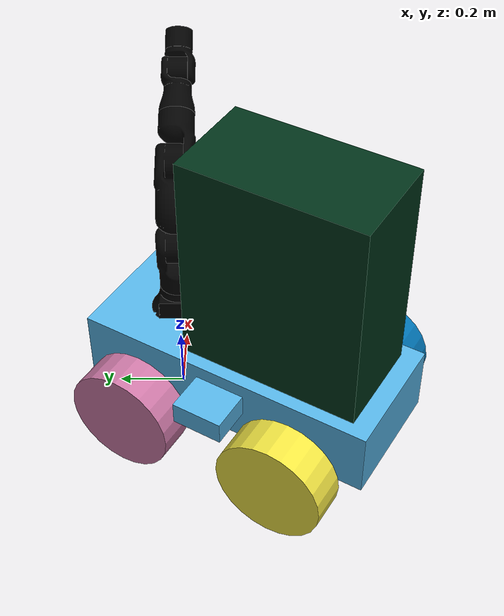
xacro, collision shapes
<?xml version="1.0"?>
<robot xmlns:xacro="http://www.ros.org/wiki/xacro" name="igus_rebel">

	<!-- Controller settings, only enable a single one in the launch file -->
	<xacro:arg name="hardware_protocol" default="cri" />

	<!-- Gripper selection -->
	<xacro:arg name="gripper" default="none" />
	<xacro:property name="gripper" value="$(arg gripper)" />

	<!-- Scout base selection -->
	<xacro:arg name="load_base" default="true" />

	<!-- Camera type selection -->
	<xacro:arg name="camera_type" default="realsense" />
	<xacro:property name="camera_type" value="$(arg camera_type)" />

	<!-- Include and call description macro -->
	<xacro:include filename="$(find igus_rebel_description_ros2)/urdf/igus_rebel.description.xacro" />
	<xacro:igus_rebel_description />

	<!-- Controller macro -->
	<xacro:include filename="$(find igus_rebel_description_ros2)/urdf/igus_rebel.control.xacro" />
	<xacro:igus_rebel_control hardware_protocol="$(arg hardware_protocol)" />

	<xacro:include filename="$(find igus_rebel_description_ros2)/urdf/igus_rebel.gazebo.xacro" />

	<!-- Add world link -->
	<link name="world" />
	<joint name="world_to_base" type="fixed">
		<parent link="world" />
		<child link="base_link" />
		<origin xyz="0.0 0.0 0.32" rpy="0.0 0.0 0.0" />
	</joint>

	<!-- Mounts, camera, effectors -->
	<xacro:if value="${gripper == 'camera'}">

		<xacro:include filename="$(find igus_rebel_description_ros2)/urdf/grippers/grippers.xacro"/>
		<xacro:gripper camera_type="$(arg camera_type)"/>

    	<xacro:if value="${camera_type == 'oakd'}">
			<xacro:include filename="$(find igus_rebel_description_ros2)/urdf/camera/oak_d_pro.xacro"/>
			<xacro:oakd_link/>
    	</xacro:if>

  	</xacro:if>

	<!-- Load base -->
	<xacro:if value="$(arg load_base)">

		<!-- Mobile Robot base -->
		<xacro:include filename="$(find igus_rebel_description_ros2)/urdf/mobile_robot/scout_v2.xacro" />

		<joint name="base_link_to_rebel_support" type="fixed">
			<parent link="base_link" />
			<child link="rebel_support" />
			<origin xyz="0.0 0.0 0.0" rpy="0 0 ${pi/3}" />
		</joint>

		<link name="rebel_support" />

		<!-- virtual joint acting as a link between base_link and mobile_robot_base_link -->
		<joint name="base_link_to_mobile_robot_base_link" type="fixed">
			<parent link="rebel_support" />
			<child link="mobile_robot_base_link" />
			<origin xyz="-0.26 0.0 -0.1" rpy="0 0 ${pi}" />
		</joint>

		<!-- castle with tower mounting sensors, batteries, computer and everyhting else-->
		<xacro:include filename="$(find igus_rebel_description_ros2)/urdf/mobile_robot/castle.xacro" />

	</xacro:if>

</robot>

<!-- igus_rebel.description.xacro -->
<robot xmlns:xacro="http://www.ros.org/wiki/xacro" name="igus_rebel">

    <material name="dark_grey">
        <color rgba="${2/255} ${2/255} ${2/255} 1.0" />
    </material>

    <xacro:macro name="igus_rebel_description">

        <!-- Set both at 0.0 if collapsing is not interesting in gazebo -->
        <xacro:property name="damping" value="0.1"/>
        <xacro:property name="friction" value="10.0"/>

        <link name="base_link">
            <visual>
                <geometry>
                    <mesh filename="file://$(find igus_rebel_description_ros2)/meshes/new/Joint0.dae" />
                </geometry>
				<material name="dark_grey"/>
            </visual>
            <collision>
                <geometry>
                    <mesh filename="file://$(find igus_rebel_description_ros2)/meshes/new/Joint0.dae" />
                </geometry>
            </collision>
            <inertial>
                <mass value="1.0" />
                <inertia ixx="1.0" ixy="0.0" ixz="0.0" iyy="1.0" iyz="0.0" izz="1.0" />
            </inertial>
        </link>
        <joint name="joint1" type="revolute">
            <parent link="base_link" />
            <child link="link_1" />
            <origin rpy="0.0 0.0 0.0" xyz="0.0 0 0.100" />
            <axis xyz="0 0 1" />
            <limit effort="330.0" lower="${-pi*179/180}" upper="${pi*179/180}" velocity="${pi*45/180}" />
            <dynamics damping="${damping}" friction="${friction}"/>
        </joint>
        <link name="link_1">
            <visual>
                <geometry>
                    <mesh filename="file://$(find igus_rebel_description_ros2)/meshes/new/Joint1.dae" />
                </geometry>
                <origin rpy="0 0 0" xyz="0 0 0" />
				<material name="dark_grey"/>
            </visual>
            <collision>
                <geometry>
                    <mesh filename="file://$(find igus_rebel_description_ros2)/meshes/new/Joint1.dae" />
                </geometry>
                <origin rpy="0 0 0" xyz="0 0 0" />
            </collision>
            <inertial>
                <mass value="0.1" />
                <inertia ixx="0.03" ixy="0.0" ixz="0.0" iyy="0.03" iyz="0.0" izz="0.03" />
            </inertial>
        </link>
        <joint name="joint2" type="revolute">
            <parent link="link_1" />
            <child link="link_2" />
            <origin rpy="0.0 ${pi/6} 0.0" xyz="0.0 0 0.149" />
            <axis xyz="0 1 0" />
            <!-- pi*2/3 are the physical limits, but to avoid any collisions we set the actual limits lower -->
            <limit effort="330.0" lower="${-pi*11/18}" upper="${pi*11/18}" velocity="${pi*45/180}" />
            <dynamics damping="${damping}" friction="${friction}"/>
        </joint>
        <link name="link_2">
            <visual>
                <geometry>
                    <mesh filename="file://$(find igus_rebel_description_ros2)/meshes/new/Joint2.dae" />
                </geometry>
                <origin rpy="0 0 0" xyz="0 0 0" />
				<material name="dark_grey"/>
            </visual>
            <collision>
                <geometry>
                    <mesh filename="file://$(find igus_rebel_description_ros2)/meshes/new/Joint2.dae" />
                </geometry>
                <origin rpy="0 0 0" xyz="0 0 0" />
            </collision>
            <inertial>
                <mass value="0.1" />
                <inertia ixx="0.03" ixy="0.0" ixz="0.0" iyy="0.03" iyz="0.0" izz="0.03" />
            </inertial>
        </link>
        <joint name="joint3" type="revolute">
            <parent link="link_2" />
            <child link="link_5" />
            <origin rpy="0.0 ${pi/6} 0.0" xyz="0.0 0.0 0.2384" />
            <axis xyz="0 1 0" />
            <!-- pi*2/3 are the physical limits, but to avoid any collisions we set the actual limits lower -->
            <limit effort="330.0" lower="${-pi*11/18}" upper="${pi*11/18}" velocity="${pi*45/180}" />
            <dynamics damping="${damping}" friction="${friction}"/>
        </joint>
        <link name="link_5">
            <visual>
                <geometry>
                    <mesh filename="file://$(find igus_rebel_description_ros2)/meshes/new/Joint3.dae" />
                </geometry>
                <origin rpy="0 0 0" xyz="0 0 0" />
				<material name="dark_grey"/>
            </visual>
            <collision>
                <geometry>
                    <mesh filename="file://$(find igus_rebel_description_ros2)/meshes/new/Joint3.dae" />
                </geometry>
                <origin rpy="0 0 0" xyz="0 0 0" />
            </collision>
            <inertial>
                <mass value="0.1" />
                <inertia ixx="0.03" ixy="0.0" ixz="0.0" iyy="0.03" iyz="0.0" izz="0.03" />
            </inertial>
        </link>
        <joint name="joint4" type="revolute">
            <parent link="link_5" />
            <child link="link_6" />
            <!-- TODO The 0.03m offset are most likely caused by the mesh file (Issue 15)-->
            <origin rpy="0.0 0.0 0.0" xyz="0.0 0 ${0.149 - 0.03}" />
            <axis xyz="0 0 1" />
            <limit effort="330.0" lower="${-pi*179/180}" upper="${pi*179/180}" velocity="${pi*45/180}" />
            <dynamics damping="${damping}" friction="${friction}"/>
        </joint>
        <link name="link_6">
            <visual>
                <geometry>
                    <mesh filename="file://$(find igus_rebel_description_ros2)/meshes/new/Joint4.dae" />
                </geometry>
                <origin rpy="0 0 0" xyz="0 0 0" />
				<material name="dark_grey"/>
            </visual>
            <collision>
                <geometry>
                    <mesh filename="file://$(find igus_rebel_description_ros2)/meshes/new/Joint4.dae" />
                </geometry>
                <origin rpy="0 0 0" xyz="0 0 0" />
            </collision>
            <inertial>
                <mass value="0.1" />
                <inertia ixx="0.03" ixy="0.0" ixz="0.0" iyy="0.03" iyz="0.0" izz="0.03" />
            </inertial>
        </link>
        <joint name="joint5" type="revolute">
            <parent link="link_6" />
            <child link="link_7" />
            <!-- TODO The 0.03m offset are most likely caused by the mesh file (Issue 15) -->
            <origin rpy="0.0 ${-pi/24} 0.0" xyz="0.0 0 ${0.14 + 0.03}" />
            <axis xyz="0 1 0" />
            <limit effort="330.0" lower="${-pi*19/36 + pi/24}" upper="${pi*19/36 + pi/24}" velocity="${pi*45/180}" />
            <dynamics damping="${damping}" friction="${friction}"/>
        </joint>
        <link name="link_7">
            <visual>
                <geometry>
                    <mesh filename="file://$(find igus_rebel_description_ros2)/meshes/new/Joint5.dae" />
                </geometry>
                <origin rpy="0 0 0" xyz="0 0 0" />
				<material name="dark_grey"/>
            </visual>
            <collision>
                <geometry>
                    <mesh filename="file://$(find igus_rebel_description_ros2)/meshes/new/Joint5.dae" />
                </geometry>
                <origin rpy="0 0 0" xyz="0 0 0" />
            </collision>
            <inertial>
                <mass value="0.1" />
                <inertia ixx="0.03" ixy="0.0" ixz="0.0" iyy="0.03" iyz="0.0" izz="0.03" />
            </inertial>
        </link>

        <joint name="joint6" type="revolute">
            <parent link="link_7" />
            <child link="link_8" />
            <origin rpy="0.0 0.0 0.0" xyz="0.0 0 0.1208" />
            <axis xyz="0 0 1" />
            <limit effort="330.0" lower="${-pi*179/180}" upper="${pi*179/180}" velocity="${pi*45/180}" />
            <dynamics damping="${damping}" friction="${friction}"/>
        </joint>

        <link name="link_8">
            <visual>
                <geometry>
                    <mesh filename="file://$(find igus_rebel_description_ros2)/meshes/new/Joint6.dae" />
                </geometry>
                <origin rpy="0 0 0" xyz="0.0 0 0" />
				<material name="dark_grey"/>
            </visual>
            <collision>
                <geometry>
                    <mesh filename="file://$(find igus_rebel_description_ros2)/meshes/new/Joint6.dae" />
                </geometry>
                <origin rpy="0 0 0" xyz="0.0 0 0" />
            </collision>
            <inertial>
                <mass value="0.1" />
                <inertia ixx="0.03" ixy="0.0" ixz="0.0" iyy="0.03" iyz="0.0" izz="0.03" />
            </inertial>
        </link>
        <joint name="joint7" type="fixed">
            <parent link="link_8" />
            <child link="flange" />
            <origin rpy="0.0 ${-pi/2} 0.0" xyz="0.0 0 0.0012" />
            <axis xyz="0 0 0" />
            <dynamics damping="${damping}" friction="${friction}"/>
        </joint>
        <link name="flange">
        </link>

    </xacro:macro>
</robot>

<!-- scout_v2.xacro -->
<robot name="scout_v2" xmlns:xacro="http://ros.org/wiki/xacro">

	<!-- Variables -->
	<xacro:property name="M_PI" value="3.14159" />

	<!-- Vehicle Geometries -->
	<xacro:property name="base_x_size" value="0.9250000" />
	<xacro:property name="base_y_size" value="0.380000" />
	<xacro:property name="base_z_size" value="0.210000" />

	<xacro:property name="wheelbase" value="0.498" />
	<xacro:property name="track" value="0.58306" />
	<xacro:property name="wheel_vertical_offset" value="-0.0702" />

	<xacro:property name="wheel_length" value="1.1653e-01" />
	<xacro:property name="wheel_radius" value="1.6459e-01" />

	<!-- Base link -->
	<link name="mobile_robot_base_link">
		<visual>
			<origin xyz="0 0 0" rpy="0 0 0" />
			<geometry>
				<mesh filename="file://$(find igus_rebel_description_ros2)/meshes/mobile_robot/mobile_robot_base_link.dae" />
			</geometry>
		</visual>
		<collision>
			<origin xyz="0 0 0.008" rpy="0 0 0" />
			<geometry>
				<box size="${base_x_size} ${base_y_size} ${base_z_size}" />
			</geometry>
		</collision>
		<collision>
			<origin xyz="0 0 ${base_z_size/6}" rpy="0 0 0" />
			<geometry>
				<box size="${base_x_size/6} ${base_y_size*1.65} ${base_z_size/3}" />
			</geometry>
		</collision>
	</link>

	<link name="inertial_link">
		<inertial>
			<mass value="50" />
			<origin xyz="0.0 0.0 0.0" />
			<inertia ixx="2.288641" ixy="0" ixz="0" iyy="5.103976" iyz="0" izz="3.431465" />
		</inertial>
	</link>

	<joint name="inertial_joint" type="fixed">
		<origin xyz="0 0 0" rpy="0 0 0" />
		<parent link="mobile_robot_base_link" />
		<child link="inertial_link" />
	</joint>

	<!-- Scout wheel macros -->
	<xacro:include filename="$(find igus_rebel_description_ros2)/urdf/mobile_robot/scout_wheel_type1.xacro" />
	<xacro:include filename="$(find igus_rebel_description_ros2)/urdf/mobile_robot/scout_wheel_type2.xacro" />
	<!-- wheel labeled from 0 to 3, conter-clockwise, starting from front right wheel -->
	<!-- motor 1 and 2 (left side) are mechanically installed in a reversed direction -->
	<xacro:scout_wheel_type1 wheel_prefix="front_right" x="${wheelbase/2}" y="${-track/2}" z="${wheel_vertical_offset}"
		phi="${pi}" />

	<xacro:scout_wheel_type2 wheel_prefix="front_left" x="${wheelbase/2}" y="${track/2}" z="${wheel_vertical_offset}" phi="0" />

	<xacro:scout_wheel_type1 wheel_prefix="rear_left" x="${-wheelbase/2}" y="${track/2}" z="${wheel_vertical_offset}" phi="0" />

	<xacro:scout_wheel_type2 wheel_prefix="rear_right" x="${-wheelbase/2}" y="${-track/2}" z="${wheel_vertical_offset}"
		phi="${pi}" />

	<link name="front_mount" />

	<joint name="front_mount_joint" type="fixed">
		<origin xyz="0.325 0.0 0.112701" rpy="0 0 0" />
		<parent link="mobile_robot_base_link" />
		<child link="front_mount" />
	</joint>

	<link name="rear_mount" />

	<joint name="rear_mount_joint" type="fixed">
		<origin xyz="-0.325 0.0 0.112701" rpy="0 0 0" />
		<parent link="mobile_robot_base_link" />
		<child link="rear_mount" />
	</joint>

	<!-- Gazebo definitions  -->
</robot>

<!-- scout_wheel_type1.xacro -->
<robot xmlns:xacro="http://ros.org/wiki/xacro" name="scout_v2">

	<xacro:macro name="scout_wheel_type1" params="wheel_prefix x y z phi">

		<link name="${wheel_prefix}_wheel_link">
			<inertial>
				<mass value="8" />
				<origin xyz="0 0 0" />
				<inertia ixx="0.1171" ixy="0" ixz="0" iyy="0.1361" iyz="0" izz="0.1171" />
			</inertial>
			<visual>
				<origin xyz="0 0 0" rpy="0 0 0" />
				<geometry>
					<mesh filename="file://$(find igus_rebel_description_ros2)/meshes/mobile_robot/wheel_type1.dae" />
				</geometry>
			</visual>
			<collision>
				<origin xyz="0 0 0" rpy="${pi/2} 0 0" />
				<geometry>
					<cylinder length="${wheel_length}" radius="${wheel_radius}" />
				</geometry>
				<contact>
					<ode>
						<min_depth>0.001</min_depth>
					</ode>
				</contact>
			</collision>
		</link>

		<joint name="${wheel_prefix}_wheel" type="fixed">
			<parent link="mobile_robot_base_link" />
			<child link="${wheel_prefix}_wheel_link" />
			<origin xyz="${x} ${y} ${z}" rpy="${phi} 0.0 0.0" />
			<axis xyz="0 -1 0" rpy="0 0 0" />
			<dynamics damping="0.0" friction="20" />
		</joint>
	</xacro:macro>

</robot>

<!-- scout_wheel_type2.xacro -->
<robot xmlns:xacro="http://ros.org/wiki/xacro" name="scout_v2">

	<xacro:macro name="scout_wheel_type2" params="wheel_prefix x y z phi">

		<link name="${wheel_prefix}_wheel_link">
			<inertial>
				<mass value="8" />
				<origin xyz="0 0 0" />
				<inertia ixx="0.1171" ixy="0" ixz="0" iyy="0.1361" iyz="0" izz="0.1171" />
			</inertial>
			<visual>
				<origin xyz="0 0 0" rpy="0 0 0" />
				<geometry>
					<mesh filename="file://$(find igus_rebel_description_ros2)/meshes/mobile_robot/wheel_type1.dae" />
				</geometry>
			</visual>
			<collision>
				<origin xyz="0 0 0" rpy="${pi/2} 0 0" />
				<geometry>
					<cylinder length="${wheel_length}" radius="${wheel_radius}" />
				</geometry>
				<contact>
					<ode>
						<min_depth>0.001</min_depth>
					</ode>
				</contact>
			</collision>
		</link>

		<joint name="${wheel_prefix}_wheel" type="fixed">
			<parent link="mobile_robot_base_link" />
			<child link="${wheel_prefix}_wheel_link" />
			<origin xyz="${x} ${y} ${z}" rpy="${phi} 0.0 0.0" />
			<axis xyz="0 -1 0" rpy="0 0 0" />
			<dynamics damping="0.0" friction="20" />
		</joint>
	</xacro:macro>

</robot>

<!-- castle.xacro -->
<robot name="scout_v2" xmlns:xacro="http://ros.org/wiki/xacro">

	<joint name="tower" type="fixed">
		<parent link="mobile_robot_base_link" />
		<child link="tower_link" />
		<origin rpy="0.0 0.0 0" xyz="0.13 0.0 0.1" />
		<axis xyz="0 0 -1" />
	</joint>

	<link name="tower_link">
		<inertial>
			<mass value="1" />
			<inertia ixx="1" ixy="1" ixz="1" iyy="0" iyz="0" izz="0" />
		</inertial>
		<visual>
			<origin xyz="0.0 0.0 0.33" rpy="0.0 0.0 0.0" />
			<geometry>
				<box size="0.55 0.3 0.69" />
			</geometry>
			<material name="dark_blue">
				<color rgba="0.0 ${51/255} ${25/255} 1.0" />
			</material>
		</visual>
		<collision>
			<origin xyz="0.0 0.0 0.33" rpy="0.0 0.0 0.0" />
			<geometry>
				<box size="0.55 0.3 0.69" />
			</geometry>
		</collision>
	</link>

</robot>
